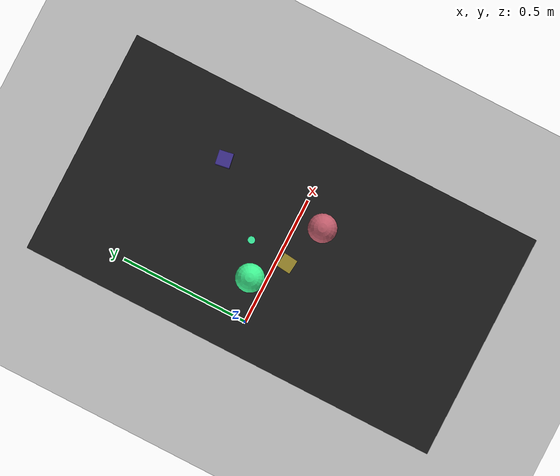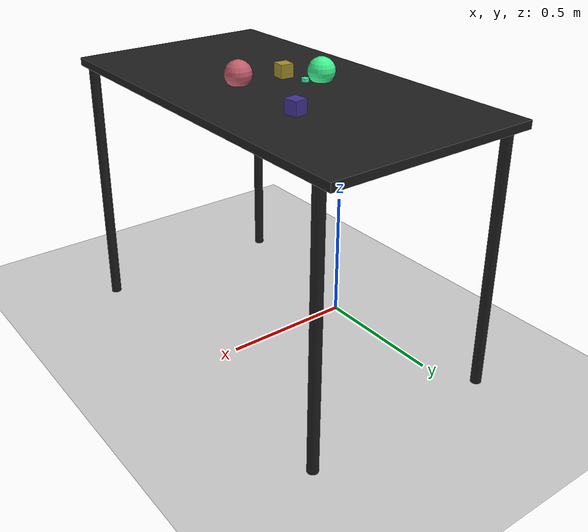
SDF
<?xml version="1.0" ?>
<sdf version="1.6">
  <world name="arm_world">
    <plugin filename="gz-sim-physics-system" name="gz::sim::systems::Physics">
      <engine>
        <filename>libgz-physics-bullet-featherstone-plugin.so</filename>
      </engine>
    </plugin>
    <plugin filename="gz-sim-user-commands-system" name="gz::sim::systems::UserCommands"/>
    <plugin filename="gz-sim-scene-broadcaster-system" name="gz::sim::systems::SceneBroadcaster"/>
    <plugin filename="gz-sim-sensors-system" name="gz::sim::systems::Sensors">
      <render_engine>ogre2</render_engine>
    </plugin>
    <gravity>0.0 0.0 -9.8</gravity>
    <scene>
      <shadows>false</shadows>
    </scene>
    <gui>
      <camera name="user_camera">
        <pose>0.75 -0.75 1.4 0 0.29 2.21</pose>
      </camera>
    </gui>
    <include>
      <uri>https://fuel.gazebosim.org/1.0/OpenRobotics/models/Sun</uri>
    </include>
    <model name="table">
      <static>true</static>
      <include>
        <uri>model://table</uri>
      </include>
      <pose>0.29 0 0 0 0 1.5708</pose>
    </model>
    <model name="ground_plane">
      <static>true</static>
      <link name="link">
        <collision name="collision">
          <geometry>
            <plane>
              <normal>0 0 1</normal>
            </plane>
          </geometry>
          <surface>
            <friction>
              <ode>
                <mu>1.0</mu>
                <mu2>1.0</mu2>
              </ode>
            </friction>
          </surface>
        </collision>
        <visual name="visual">
          <geometry>
            <plane>
              <normal>0 0 1</normal>
              <size>100 100</size>
            </plane>
          </geometry>
          <material>
            <ambient>0.8 0.8 0.8 1</ambient>
            <diffuse>0.8 0.8 0.8 1</diffuse>
            <specular>0.8 0.8 0.8 1</specular>
          </material>
        </visual>
      </link>
    </model>
    <model name="sphere_l_0">
      <pose>0.141 0.042 1.05 0 0 5.97</pose>
      <link name="sphere_l_0_link">
        <inertial>
          <mass>0.05</mass>
          <inertia>
            <ixx>2.04e-7</ixx>
            <iyy>2.04e-7</iyy>
            <izz>3.9e-8</izz>
            <ixy>0</ixy>
            <ixz>0</ixz>
            <iyz>0</iyz>
          </inertia>
        </inertial>
        <collision name="sphere_l_0_collision">
          <geometry>
            <sphere>
              <radius>0.05</radius>
            </sphere>
          </geometry>
          <surface>
            <friction>
              <ode>
                <mu>0.8</mu>
                <mu2>0.8</mu2>
                <fdir1>0 0 1</fdir1>
                <slip1>0.001</slip1>
                <slip2>0.001</slip2>
              </ode>
              <torsional>
                <coefficient>0.1</coefficient>
                <surface_radius>0.015</surface_radius>
                <use_patch_radius>true</use_patch_radius>
              </torsional>
            </friction>
            <contact>
              <ode>
                <kp>1e5</kp>
                <kd>10</kd>
                <max_vel>0.1</max_vel>
                <min_depth>0.001</min_depth>
                <soft_cfm>0.01</soft_cfm>
                <soft_erp>0.2</soft_erp>
              </ode>
            </contact>
            <bounce>
              <restitution_coefficient>0.2</restitution_coefficient>
              <threshold>0.01</threshold>
            </bounce>
          </surface>
        </collision>
        <visual name="sphere_l_0_visual">
          <geometry>
            <sphere>
              <radius>0.05</radius>
            </sphere>
          </geometry>
          <material>
            <ambient>0.25 0.97 0.58 1</ambient>
            <diffuse>0.25 0.97 0.58 1</diffuse>
          </material>
        </visual>
        <velocity_decay>
          <linear>1</linear>
          <angular>1</angular>
        </velocity_decay>
      </link>
    </model>
    <model name="cylinder_s_1">
      <pose>0.255 0.095 1.05 0 0 2.73</pose>
      <link name="cylinder_s_1_link">
        <inertial>
          <mass>0.05</mass>
          <inertia>
            <ixx>2.04e-7</ixx>
            <iyy>2.04e-7</iyy>
            <izz>3.9e-8</izz>
            <ixy>0</ixy>
            <ixz>0</ixz>
            <iyz>0</iyz>
          </inertia>
        </inertial>
        <collision name="cylinder_s_1_collision">
          <geometry>
            <cylinder>
              <radius>0.0125</radius>
              <length>0.0125</length>
            </cylinder>
          </geometry>
          <surface>
            <friction>
              <ode>
                <mu>0.8</mu>
                <mu2>0.8</mu2>
                <fdir1>0 0 1</fdir1>
                <slip1>0.001</slip1>
                <slip2>0.001</slip2>
              </ode>
              <torsional>
                <coefficient>0.1</coefficient>
                <surface_radius>0.015</surface_radius>
                <use_patch_radius>true</use_patch_radius>
              </torsional>
            </friction>
            <contact>
              <ode>
                <kp>1e5</kp>
                <kd>10</kd>
                <max_vel>0.1</max_vel>
                <min_depth>0.001</min_depth>
                <soft_cfm>0.01</soft_cfm>
                <soft_erp>0.2</soft_erp>
              </ode>
            </contact>
            <bounce>
              <restitution_coefficient>0.2</restitution_coefficient>
              <threshold>0.01</threshold>
            </bounce>
          </surface>
        </collision>
        <visual name="cylinder_s_1_visual">
          <geometry>
            <cylinder>
              <radius>0.0125</radius>
              <length>0.0125</length>
            </cylinder>
          </geometry>
          <material>
            <ambient>0.24 1.0 0.66 1</ambient>
            <diffuse>0.24 1.0 0.66 1</diffuse>
          </material>
        </visual>
        <velocity_decay>
          <linear>1</linear>
          <angular>1</angular>
        </velocity_decay>
      </link>
    </model>
    <model name="sphere_l_2">
      <pose>0.398 -0.097 1.05 0 0 2.07</pose>
      <link name="sphere_l_2_link">
        <inertial>
          <mass>0.05</mass>
          <inertia>
            <ixx>2.04e-7</ixx>
            <iyy>2.04e-7</iyy>
            <izz>3.9e-8</izz>
            <ixy>0</ixy>
            <ixz>0</ixz>
            <iyz>0</iyz>
          </inertia>
        </inertial>
        <collision name="sphere_l_2_collision">
          <geometry>
            <sphere>
              <radius>0.05</radius>
            </sphere>
          </geometry>
          <surface>
            <friction>
              <ode>
                <mu>0.8</mu>
                <mu2>0.8</mu2>
                <fdir1>0 0 1</fdir1>
                <slip1>0.001</slip1>
                <slip2>0.001</slip2>
              </ode>
              <torsional>
                <coefficient>0.1</coefficient>
                <surface_radius>0.015</surface_radius>
                <use_patch_radius>true</use_patch_radius>
              </torsional>
            </friction>
            <contact>
              <ode>
                <kp>1e5</kp>
                <kd>10</kd>
                <max_vel>0.1</max_vel>
                <min_depth>0.001</min_depth>
                <soft_cfm>0.01</soft_cfm>
                <soft_erp>0.2</soft_erp>
              </ode>
            </contact>
            <bounce>
              <restitution_coefficient>0.2</restitution_coefficient>
              <threshold>0.01</threshold>
            </bounce>
          </surface>
        </collision>
        <visual name="sphere_l_2_visual">
          <geometry>
            <sphere>
              <radius>0.05</radius>
            </sphere>
          </geometry>
          <material>
            <ambient>0.77 0.37 0.43 1</ambient>
            <diffuse>0.77 0.37 0.43 1</diffuse>
          </material>
        </visual>
        <velocity_decay>
          <linear>1</linear>
          <angular>1</angular>
        </velocity_decay>
      </link>
    </model>
    <model name="cube_m_3">
      <pose>0.24 -0.046 1.05 0 0 6.18</pose>
      <link name="cube_m_3_link">
        <inertial>
          <mass>0.05</mass>
          <inertia>
            <ixx>2.04e-7</ixx>
            <iyy>2.04e-7</iyy>
            <izz>3.9e-8</izz>
            <ixy>0</ixy>
            <ixz>0</ixz>
            <iyz>0</iyz>
          </inertia>
        </inertial>
        <collision name="cube_m_3_collision">
          <geometry>
            <box>
              <size>0.05 0.05 0.05</size>
            </box>
          </geometry>
          <surface>
            <friction>
              <ode>
                <mu>0.8</mu>
                <mu2>0.8</mu2>
                <fdir1>0 0 1</fdir1>
                <slip1>0.001</slip1>
                <slip2>0.001</slip2>
              </ode>
              <torsional>
                <coefficient>0.1</coefficient>
                <surface_radius>0.015</surface_radius>
                <use_patch_radius>true</use_patch_radius>
              </torsional>
            </friction>
            <contact>
              <ode>
                <kp>1e5</kp>
                <kd>10</kd>
                <max_vel>0.1</max_vel>
                <min_depth>0.001</min_depth>
                <soft_cfm>0.01</soft_cfm>
                <soft_erp>0.2</soft_erp>
              </ode>
            </contact>
            <bounce>
              <restitution_coefficient>0.2</restitution_coefficient>
              <threshold>0.01</threshold>
            </bounce>
          </surface>
        </collision>
        <visual name="cube_m_3_visual">
          <geometry>
            <box>
              <size>0.05 0.05 0.05</size>
            </box>
          </geometry>
          <material>
            <ambient>0.64 0.56 0.18 1</ambient>
            <diffuse>0.64 0.56 0.18 1</diffuse>
          </material>
        </visual>
        <velocity_decay>
          <linear>1</linear>
          <angular>1</angular>
        </velocity_decay>
      </link>
    </model>
    <model name="cube_m_4">
      <pose>0.453 0.298 1.05 0 0 3.3</pose>
      <link name="cube_m_4_link">
        <inertial>
          <mass>0.05</mass>
          <inertia>
            <ixx>2.04e-7</ixx>
            <iyy>2.04e-7</iyy>
            <izz>3.9e-8</izz>
            <ixy>0</ixy>
            <ixz>0</ixz>
            <iyz>0</iyz>
          </inertia>
        </inertial>
        <collision name="cube_m_4_collision">
          <geometry>
            <box>
              <size>0.05 0.05 0.05</size>
            </box>
          </geometry>
          <surface>
            <friction>
              <ode>
                <mu>0.8</mu>
                <mu2>0.8</mu2>
                <fdir1>0 0 1</fdir1>
                <slip1>0.001</slip1>
                <slip2>0.001</slip2>
              </ode>
              <torsional>
                <coefficient>0.1</coefficient>
                <surface_radius>0.015</surface_radius>
                <use_patch_radius>true</use_patch_radius>
              </torsional>
            </friction>
            <contact>
              <ode>
                <kp>1e5</kp>
                <kd>10</kd>
                <max_vel>0.1</max_vel>
                <min_depth>0.001</min_depth>
                <soft_cfm>0.01</soft_cfm>
                <soft_erp>0.2</soft_erp>
              </ode>
            </contact>
            <bounce>
              <restitution_coefficient>0.2</restitution_coefficient>
              <threshold>0.01</threshold>
            </bounce>
          </surface>
        </collision>
        <visual name="cube_m_4_visual">
          <geometry>
            <box>
              <size>0.05 0.05 0.05</size>
            </box>
          </geometry>
          <material>
            <ambient>0.26 0.2 0.59 1</ambient>
            <diffuse>0.26 0.2 0.59 1</diffuse>
          </material>
        </visual>
        <velocity_decay>
          <linear>1</linear>
          <angular>1</angular>
        </velocity_decay>
      </link>
    </model>
  </world>
</sdf>

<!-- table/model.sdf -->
<sdf version="1.5">
  <model name="table">
    <static>true</static>
    <link name="link">
      <collision name="surface">
        <pose>0 0 1.0 0 0 0</pose>
        <geometry>
          <box>
            <size>1.5 0.8 0.03</size>
          </box>
        </geometry>
        <surface>
          <friction>
            <ode>
              <mu>0.6</mu>
              <mu2>0.6</mu2>
            </ode>
          </friction>
        </surface>
      </collision>
      <visual name="surface">
        <pose>0 0 1.0 0 0 0</pose>
        <geometry>
          <box>
            <size>1.5 0.8 0.03</size>
          </box>
        </geometry>
        <material>
          <script>
            <uri>file://media/materials/scripts/gazebo.material</uri>
            <name>Gazebo/Black</name>
          </script>
        </material>
      </visual>
      <collision name="front_left_leg">
        <pose>0.68 0.38 0.5 0 0 0</pose>
        <geometry>
          <cylinder>
            <radius>0.02</radius>
            <length>1.0</length>
          </cylinder>
        </geometry>
      </collision>
      <visual name="front_left_leg">
        <pose>0.68 0.38 0.5 0 0 0</pose>
        <geometry>
          <cylinder>
            <radius>0.02</radius>
            <length>1.0</length>
          </cylinder>
        </geometry>
        <material>
          <script>
            <uri>file://media/materials/scripts/gazebo.material</uri>
            <name>Gazebo/Black</name>
          </script>
        </material>
      </visual>
      <collision name="front_right_leg">
        <pose>0.68 -0.38 0.5 0 0 0</pose>
        <geometry>
          <cylinder>
            <radius>0.02</radius>
            <length>1.0</length>
          </cylinder>
        </geometry>
      </collision>
      <visual name="front_right_leg">
        <pose>0.68 -0.38 0.5 0 0 0</pose>
        <geometry>
          <cylinder>
            <radius>0.02</radius>
            <length>1.0</length>
          </cylinder>
        </geometry>
        <material>
          <script>
            <uri>file://media/materials/scripts/gazebo.material</uri>
            <name>Gazebo/Black</name>
          </script>
        </material>
      </visual>
      <collision name="back_right_leg">
        <pose>-0.68 -0.38 0.5 0 0 0</pose>
        <geometry>
          <cylinder>
            <radius>0.02</radius>
            <length>1.0</length>
          </cylinder>
        </geometry>
      </collision>
      <visual name="back_right_leg">
        <pose>-0.68 -0.38 0.5 0 0 0</pose>
        <geometry>
          <cylinder>
            <radius>0.02</radius>
            <length>1.0</length>
          </cylinder>
        </geometry>
        <material>
          <script>
            <uri>file://media/materials/scripts/gazebo.material</uri>
            <name>Gazebo/Black</name>
          </script>
        </material>
      </visual>
      <collision name="back_left_leg">
        <pose>-0.68 0.38 0.5 0 0 0</pose>
        <geometry>
          <cylinder>
            <radius>0.02</radius>
            <length>1.0</length>
          </cylinder>
        </geometry>
      </collision>
      <visual name="back_left_leg">
        <pose>-0.68 0.38 0.5 0 0 0</pose>
        <geometry>
          <cylinder>
            <radius>0.02</radius>
            <length>1.0</length>
          </cylinder>
        </geometry>
        <material>
          <script>
            <uri>file://media/materials/scripts/gazebo.material</uri>
            <name>Gazebo/Black</name>
          </script>
        </material>
      </visual>
    </link>
  </model>
</sdf>
